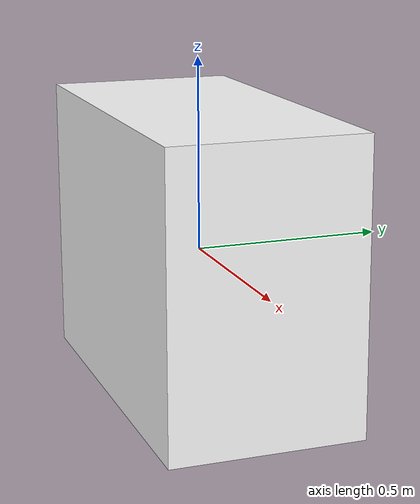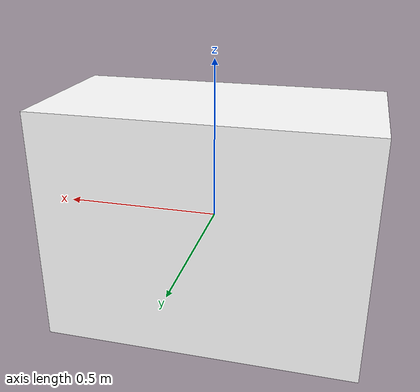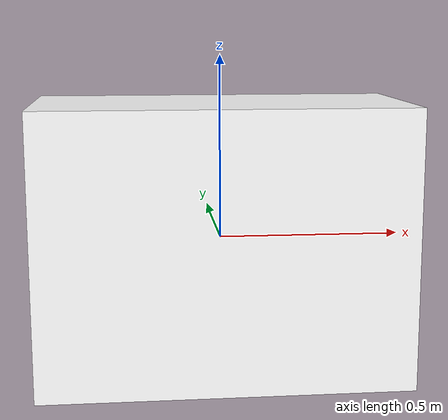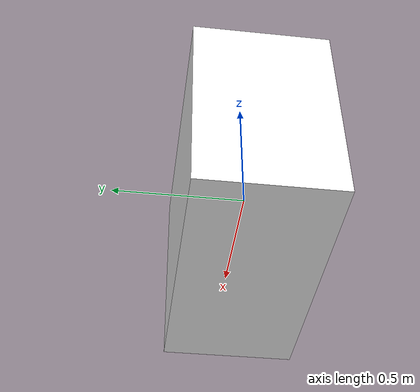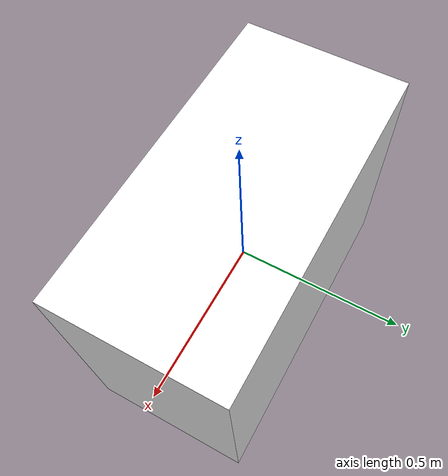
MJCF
<!-- Plan H, HT2: textured_box.gltf's material declared in MJCF, for the glTF-vs-MJCF oracle.
     Written by generate.py; see PROVENANCE.json. -->
<mujoco model="textured_box">
  <compiler meshdir="." texturedir="."/>
  <asset>
    <mesh name="box" file="textured_box.obj"/>
    <texture name="base" type="2d" file="base.png" colorspace="sRGB"/>
    <texture name="mr" type="2d" file="mr.png" colorspace="linear"/>
    <texture name="normal" type="2d" file="normal.png" colorspace="linear"/>
    <texture name="glow" type="2d" file="emissive.png" colorspace="sRGB"/>
    <material name="box" emission="2">
      <layer role="rgb" texture="base"/>
      <layer role="orm" texture="mr"/>
      <layer role="normal" texture="normal"/>
      <layer role="emissive" texture="glow"/>
    </material>
  </asset>
  <worldbody>
    <geom name="box" type="mesh" mesh="box" material="box" contype="0" conaffinity="0"/>
  </worldbody>
</mujoco>
